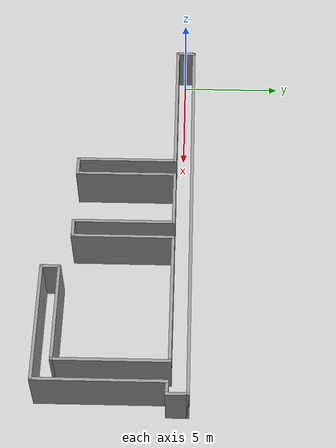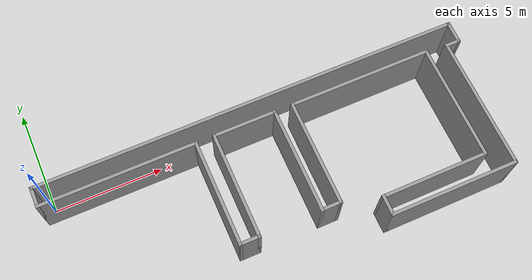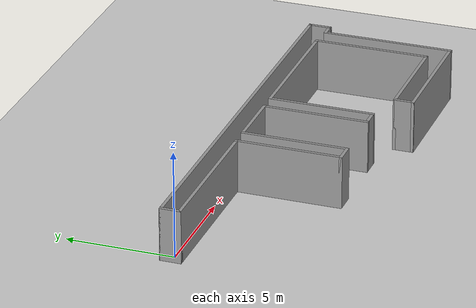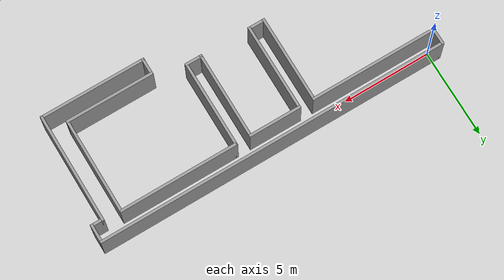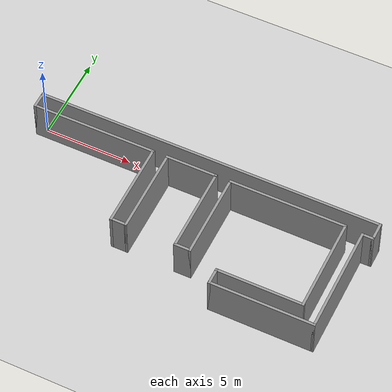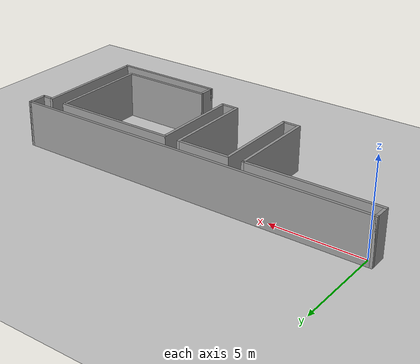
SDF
<sdf version="1.4">
  <world name="default">

    <scene>
      <ambient>0.4 0.4 0.4 1</ambient>
      <background>0.7 0.7 0.7 1</background>
      <shadows>true</shadows>
    </scene>

    <!-- A global light source -->
    <include>
      <uri>model://sun</uri>
    </include>

    <!-- A ground plane -->
    <include>
      <uri>model://ground_plane</uri>
    </include>

    <physics type="ode">
      <real_time_update_rate>1000.0</real_time_update_rate>
      <max_step_size>0.001</max_step_size>
      <real_time_factor>1</real_time_factor>
      <ode>
        <solver>
          <type>quick</type>
          <iters>150</iters>
          <precon_iters>0</precon_iters>
          <sor>1.400000</sor>
          <use_dynamic_moi_rescaling>1</use_dynamic_moi_rescaling>
        </solver>
        <constraints>
          <cfm>0.00001</cfm>
          <erp>0.2</erp>
          <contact_max_correcting_vel>2000.000000</contact_max_correcting_vel>
          <contact_surface_layer>0.01000</contact_surface_layer>
        </constraints>
      </ode>
    </physics>

  <model name='tip1'>
    <pose frame=''>9.5375 -3.0775 0 0 -0 0</pose>
    <link name='Wall_0'>
      <collision name='Wall_0_Collision'>
        <geometry>
          <box>
            <size>1 0.15 2.5</size>
          </box>
        </geometry>
        <pose frame=''>0 0 1.25 0 -0 0</pose>
      </collision>
      <visual name='Wall_0_Visual'>
        <pose frame=''>0 0 1.25 0 -0 0</pose>
        <geometry>
          <box>
            <size>1 0.15 2.5</size>
          </box>
        </geometry>
        <material>
          <script>
            <uri>file://media/materials/scripts/gazebo.material</uri>
            <name>Gazebo/Grey</name>
          </script>
          <ambient>1 1 1 1</ambient>
        </material>
        <meta>
          <layer>0</layer>
        </meta>
      </visual>
      <pose frame=''>-9.925 3.1 0 0 -0 -1.5708</pose>
    </link>
    <link name='Wall_10'>
      <collision name='Wall_10_Collision'>
        <geometry>
          <box>
            <size>1 0.15 2.5</size>
          </box>
        </geometry>
        <pose frame=''>0 0 1.25 0 -0 0</pose>
      </collision>
      <visual name='Wall_10_Visual'>
        <pose frame=''>0 0 1.25 0 -0 0</pose>
        <geometry>
          <box>
            <size>1 0.15 2.5</size>
          </box>
        </geometry>
        <material>
          <script>
            <uri>file://media/materials/scripts/gazebo.material</uri>
            <name>Gazebo/Grey</name>
          </script>
          <ambient>1 1 1 1</ambient>
        </material>
        <meta>
          <layer>0</layer>
        </meta>
      </visual>
      <pose frame=''>1.3 -2.175 0 0 -0 0</pose>
    </link>
    <link name='Wall_11'>
      <collision name='Wall_11_Collision'>
        <geometry>
          <box>
            <size>5 0.15 2.5</size>
          </box>
        </geometry>
        <pose frame=''>0 0 1.25 0 -0 0</pose>
      </collision>
      <visual name='Wall_11_Visual'>
        <pose frame=''>0 0 1.25 0 -0 0</pose>
        <geometry>
          <box>
            <size>5 0.15 2.5</size>
          </box>
        </geometry>
        <material>
          <script>
            <uri>file://media/materials/scripts/gazebo.material</uri>
            <name>Gazebo/Grey</name>
          </script>
          <ambient>1 1 1 1</ambient>
        </material>
        <meta>
          <layer>0</layer>
        </meta>
      </visual>
      <pose frame=''>1.725 0.25 0 0 -0 1.5708</pose>
    </link>
    <link name='Wall_12'>
      <collision name='Wall_12_Collision'>
        <geometry>
          <box>
            <size>6.75 0.15 2.5</size>
          </box>
        </geometry>
        <pose frame=''>0 0 1.25 0 -0 0</pose>
      </collision>
      <visual name='Wall_12_Visual'>
        <pose frame=''>0 0 1.25 0 -0 0</pose>
        <geometry>
          <box>
            <size>6.75 0.15 2.5</size>
          </box>
        </geometry>
        <material>
          <script>
            <uri>file://media/materials/scripts/gazebo.material</uri>
            <name>Gazebo/Grey</name>
          </script>
          <ambient>1 1 1 1</ambient>
        </material>
        <meta>
          <layer>0</layer>
        </meta>
      </visual>
      <pose frame=''>5.025 2.675 0 0 -0 0</pose>
    </link>
    <link name='Wall_13'>
      <collision name='Wall_13_Collision'>
        <geometry>
          <box>
            <size>5.5 0.15 2.5</size>
          </box>
        </geometry>
        <pose frame=''>0 0 1.25 0 -0 0</pose>
      </collision>
      <visual name='Wall_13_Visual'>
        <pose frame=''>0 0 1.25 0 -0 0</pose>
        <geometry>
          <box>
            <size>5.5 0.15 2.5</size>
          </box>
        </geometry>
        <material>
          <script>
            <uri>file://media/materials/scripts/gazebo.material</uri>
            <name>Gazebo/Grey</name>
          </script>
          <ambient>1 1 1 1</ambient>
        </material>
        <meta>
          <layer>0</layer>
        </meta>
      </visual>
      <pose frame=''>8.325 0 0 0 -0 -1.5708</pose>
    </link>
    <link name='Wall_14'>
      <collision name='Wall_14_Collision'>
        <geometry>
          <box>
            <size>5 0.15 2.5</size>
          </box>
        </geometry>
        <pose frame=''>0 0 1.25 0 -0 0</pose>
      </collision>
      <visual name='Wall_14_Visual'>
        <pose frame=''>0 0 1.25 0 -0 0</pose>
        <geometry>
          <box>
            <size>5 0.15 2.5</size>
          </box>
        </geometry>
        <material>
          <script>
            <uri>file://media/materials/scripts/gazebo.material</uri>
            <name>Gazebo/Grey</name>
          </script>
          <ambient>1 1 1 1</ambient>
        </material>
        <meta>
          <layer>0</layer>
        </meta>
      </visual>
      <pose frame=''>5.9 -2.675 0 0 -0 3.14159</pose>
    </link>
    <link name='Wall_15'>
      <collision name='Wall_15_Collision'>
        <geometry>
          <box>
            <size>1 0.15 2.5</size>
          </box>
        </geometry>
        <pose frame=''>0 0 1.25 0 -0 0</pose>
      </collision>
      <visual name='Wall_15_Visual'>
        <pose frame=''>0 0 1.25 0 -0 0</pose>
        <geometry>
          <box>
            <size>1 0.15 2.5</size>
          </box>
        </geometry>
        <material>
          <script>
            <uri>file://media/materials/scripts/gazebo.material</uri>
            <name>Gazebo/Grey</name>
          </script>
          <ambient>1 1 1 1</ambient>
        </material>
        <meta>
          <layer>0</layer>
        </meta>
      </visual>
      <pose frame=''>3.475 -3.1 0 0 -0 -1.5708</pose>
    </link>
    <link name='Wall_16'>
      <collision name='Wall_16_Collision'>
        <geometry>
          <box>
            <size>6 0.15 2.5</size>
          </box>
        </geometry>
        <pose frame=''>0 0 1.25 0 -0 0</pose>
      </collision>
      <visual name='Wall_16_Visual'>
        <pose frame=''>0 0 1.25 0 -0 0</pose>
        <geometry>
          <box>
            <size>6 0.15 2.5</size>
          </box>
        </geometry>
        <material>
          <script>
            <uri>file://media/materials/scripts/gazebo.material</uri>
            <name>Gazebo/Grey</name>
          </script>
          <ambient>1 1 1 1</ambient>
        </material>
        <meta>
          <layer>0</layer>
        </meta>
      </visual>
      <pose frame=''>6.4 -3.525 0 0 -0 0</pose>
    </link>
    <link name='Wall_17'>
      <collision name='Wall_17_Collision'>
        <geometry>
          <box>
            <size>6.25 0.15 2.5</size>
          </box>
        </geometry>
        <pose frame=''>0 0 1.25 0 -0 0</pose>
      </collision>
      <visual name='Wall_17_Visual'>
        <pose frame=''>0 0 1.25 0 -0 0</pose>
        <geometry>
          <box>
            <size>6.25 0.15 2.5</size>
          </box>
        </geometry>
        <material>
          <script>
            <uri>file://media/materials/scripts/gazebo.material</uri>
            <name>Gazebo/Grey</name>
          </script>
          <ambient>1 1 1 1</ambient>
        </material>
        <meta>
          <layer>0</layer>
        </meta>
      </visual>
      <pose frame=''>9.325 -0.475 0 0 -0 1.5708</pose>
    </link>
    <link name='Wall_18'>
      <collision name='Wall_18_Collision'>
        <geometry>
          <box>
            <size>0.75 0.15 2.5</size>
          </box>
        </geometry>
        <pose frame=''>0 0 1.25 0 -0 0</pose>
      </collision>
      <visual name='Wall_18_Visual'>
        <pose frame=''>0 0 1.25 0 -0 0</pose>
        <geometry>
          <box>
            <size>0.75 0.15 2.5</size>
          </box>
        </geometry>
        <material>
          <script>
            <uri>file://media/materials/scripts/gazebo.material</uri>
            <name>Gazebo/Grey</name>
          </script>
          <ambient>1 1 1 1</ambient>
        </material>
        <meta>
          <layer>0</layer>
        </meta>
      </visual>
      <pose frame=''>9.625 2.575 0 0 -0 0</pose>
    </link>
    <link name='Wall_19'>
      <collision name='Wall_19_Collision'>
        <geometry>
          <box>
            <size>1.1 0.15 2.5</size>
          </box>
        </geometry>
        <pose frame=''>0 0 1.25 0 -0 0</pose>
      </collision>
      <visual name='Wall_19_Visual'>
        <pose frame=''>0 0 1.25 0 -0 0</pose>
        <geometry>
          <box>
            <size>1.1 0.15 2.5</size>
          </box>
        </geometry>
        <material>
          <script>
            <uri>file://media/materials/scripts/gazebo.material</uri>
            <name>Gazebo/Grey</name>
          </script>
          <ambient>1 1 1 1</ambient>
        </material>
        <meta>
          <layer>0</layer>
        </meta>
      </visual>
      <pose frame=''>9.925 3.05 0 0 -0 1.5708</pose>
    </link>
    <link name='Wall_2'>
      <collision name='Wall_2_Collision'>
        <geometry>
          <box>
            <size>20 0.15 2.5</size>
          </box>
        </geometry>
        <pose frame=''>0 0 1.25 0 -0 0</pose>
      </collision>
      <visual name='Wall_2_Visual'>
        <pose frame=''>0 0 1.25 0 -0 0</pose>
        <geometry>
          <box>
            <size>20 0.15 2.5</size>
          </box>
        </geometry>
        <material>
          <script>
            <uri>file://media/materials/scripts/gazebo.material</uri>
            <name>Gazebo/Grey</name>
          </script>
          <ambient>1 1 1 1</ambient>
        </material>
        <meta>
          <layer>0</layer>
        </meta>
      </visual>
      <pose frame=''>0 3.525 0 0 -0 0</pose>
    </link>
    <link name='Wall_4'>
      <collision name='Wall_4_Collision'>
        <geometry>
          <box>
            <size>7.25 0.15 2.5</size>
          </box>
        </geometry>
        <pose frame=''>0 0 1.25 0 -0 0</pose>
      </collision>
      <visual name='Wall_4_Visual'>
        <pose frame=''>0 0 1.25 0 -0 0</pose>
        <geometry>
          <box>
            <size>7.25 0.15 2.5</size>
          </box>
        </geometry>
        <material>
          <script>
            <uri>file://media/materials/scripts/gazebo.material</uri>
            <name>Gazebo/Grey</name>
          </script>
          <ambient>1 1 1 1</ambient>
        </material>
        <meta>
          <layer>0</layer>
        </meta>
      </visual>
      <pose frame=''>-6.375 2.675 0 0 -0 0</pose>
    </link>
    <link name='Wall_5'>
      <collision name='Wall_5_Collision'>
        <geometry>
          <box>
            <size>5 0.15 2.5</size>
          </box>
        </geometry>
        <pose frame=''>0 0 1.25 0 -0 0</pose>
      </collision>
      <visual name='Wall_5_Visual'>
        <pose frame=''>0 0 1.25 0 -0 0</pose>
        <geometry>
          <box>
            <size>5 0.15 2.5</size>
          </box>
        </geometry>
        <material>
          <script>
            <uri>file://media/materials/scripts/gazebo.material</uri>
            <name>Gazebo/Grey</name>
          </script>
          <ambient>1 1 1 1</ambient>
        </material>
        <meta>
          <layer>0</layer>
        </meta>
      </visual>
      <pose frame=''>-2.825 0.25 0 0 -0 -1.5708</pose>
    </link>
    <link name='Wall_6'>
      <collision name='Wall_6_Collision'>
        <geometry>
          <box>
            <size>1 0.15 2.5</size>
          </box>
        </geometry>
        <pose frame=''>0 0 1.25 0 -0 0</pose>
      </collision>
      <visual name='Wall_6_Visual'>
        <pose frame=''>0 0 1.25 0 -0 0</pose>
        <geometry>
          <box>
            <size>1 0.15 2.5</size>
          </box>
        </geometry>
        <material>
          <script>
            <uri>file://media/materials/scripts/gazebo.material</uri>
            <name>Gazebo/Grey</name>
          </script>
          <ambient>1 1 1 1</ambient>
        </material>
        <meta>
          <layer>0</layer>
        </meta>
      </visual>
      <pose frame=''>-2.4 -2.175 0 0 -0 0</pose>
    </link>
    <link name='Wall_7'>
      <collision name='Wall_7_Collision'>
        <geometry>
          <box>
            <size>5 0.15 2.5</size>
          </box>
        </geometry>
        <pose frame=''>0 0 1.25 0 -0 0</pose>
      </collision>
      <visual name='Wall_7_Visual'>
        <pose frame=''>0 0 1.25 0 -0 0</pose>
        <geometry>
          <box>
            <size>5 0.15 2.5</size>
          </box>
        </geometry>
        <material>
          <script>
            <uri>file://media/materials/scripts/gazebo.material</uri>
            <name>Gazebo/Grey</name>
          </script>
          <ambient>1 1 1 1</ambient>
        </material>
        <meta>
          <layer>0</layer>
        </meta>
      </visual>
      <pose frame=''>-1.975 0.25 0 0 -0 1.5708</pose>
    </link>
    <link name='Wall_8'>
      <collision name='Wall_8_Collision'>
        <geometry>
          <box>
            <size>3 0.15 2.5</size>
          </box>
        </geometry>
        <pose frame=''>0 0 1.25 0 -0 0</pose>
      </collision>
      <visual name='Wall_8_Visual'>
        <pose frame=''>0 0 1.25 0 -0 0</pose>
        <geometry>
          <box>
            <size>3 0.15 2.5</size>
          </box>
        </geometry>
        <material>
          <script>
            <uri>file://media/materials/scripts/gazebo.material</uri>
            <name>Gazebo/Grey</name>
          </script>
          <ambient>1 1 1 1</ambient>
        </material>
        <meta>
          <layer>0</layer>
        </meta>
      </visual>
      <pose frame=''>-0.55 2.675 0 0 -0 0</pose>
    </link>
    <link name='Wall_9'>
      <collision name='Wall_9_Collision'>
        <geometry>
          <box>
            <size>5 0.15 2.5</size>
          </box>
        </geometry>
        <pose frame=''>0 0 1.25 0 -0 0</pose>
      </collision>
      <visual name='Wall_9_Visual'>
        <pose frame=''>0 0 1.25 0 -0 0</pose>
        <geometry>
          <box>
            <size>5 0.15 2.5</size>
          </box>
        </geometry>
        <material>
          <script>
            <uri>file://media/materials/scripts/gazebo.material</uri>
            <name>Gazebo/Grey</name>
          </script>
          <ambient>1 1 1 1</ambient>
        </material>
        <meta>
          <layer>0</layer>
        </meta>
      </visual>
      <pose frame=''>0.875 0.25 0 0 -0 -1.5708</pose>
    </link>
    <static>1</static>
  </model>

  </world>

</sdf>
